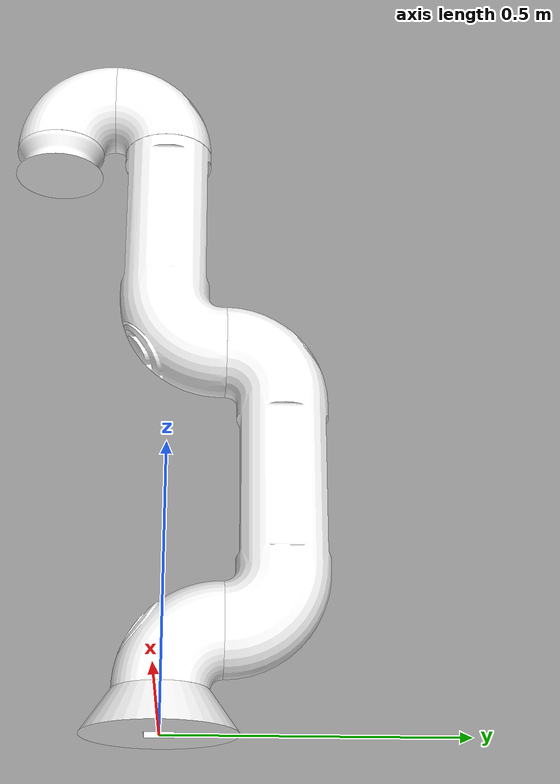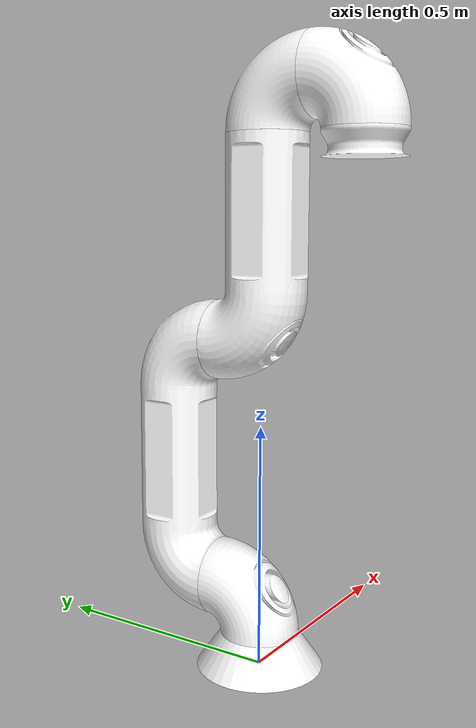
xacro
<?xml version="1.0"?>
<robot
  name="robot_arm" xmlns:xacro="http://ros.org/wiki/xacro">
  <link name="dummy_link"></link>
  <link
    name="base_link">
    <inertial>
      <origin
        xyz="0.0010762 0.032271 6.5803E-18"
        rpy="0 0 0" />
      <mass
        value="10" />
      <inertia
        ixx="0.0085262"
        ixy="-9.9757E-21"
        ixz="1.9334E-21"
        iyy="0.014824"
        iyz="3.5826E-19"
        izz="0.0085262" />
    </inertial>
    <visual>
      <origin
        xyz="0 0 0"
        rpy="0 0 0" />
      <geometry>
        <mesh
          filename="package://robot_arm/meshes/base_link.STL" />
      </geometry>
      <material
        name="">
        <color
          rgba="1 1 1 1" />
      </material>
    </visual>
    <collision>
      <origin
        xyz="0 0 0"
        rpy="0 0 0" />
      <geometry>
        <mesh
          filename="package://robot_arm/meshes/base_link.STL" />
      </geometry>
    </collision>
  </link>
  <joint name="dummy_joint" type="fixed">
    <origin rpy="0 0 0" xyz="0 0 0" />
    <parent link="dummy_link"/>
    <child link="base_link"/>
  </joint>

  <link
    name="link1">
    <inertial>
      <origin
        xyz="-0.030652 0.074961 2.1176E-07"
        rpy="0 0 0" />
      <mass
        value="12" />
      <inertia
        ixx="0.01107"
        ixy="0.0024842"
        ixz="-1.4407E-09"
        iyy="0.011299"
        iyz="-3.464E-09"
        izz="0.012247" />
    </inertial>
    <visual>
      <origin
        xyz="0 0 0"
        rpy="0 0 0" />
      <geometry>
        <mesh
          filename="package://robot_arm/meshes/link1.STL" />
      </geometry>
      <material
        name="">
        <color
          rgba="1 1 1 1" />
      </material>
    </visual>
    <collision>
      <origin
        xyz="0 0 0"
        rpy="0 0 0" />
      <geometry>
        <mesh
          filename="package://robot_arm/meshes/link1.STL" />
      </geometry>
    </collision>
  </link>
  <joint
    name="joint1"
    type="continuous">
    <origin
      xyz="0.0010762 0 0.071031"
      rpy="1.5708 0 -1.5526" />
    <parent
      link="base_link" />
    <child
      link="link1" />
    <axis
      xyz="0 -1 0" />
  </joint>
  <link
    name="link2">
    <inertial>
      <origin
        xyz="-0.11854 -0.24989 -7.9463E-07"
        rpy="0 0 0" />
      <mass
        value="5" />
      <inertia
        ixx="0.39092"
        ixy="0.0038032"
        ixz="-2.1049E-08"
        iyy="0.042388"
        iyz="-2.0793E-07"
        izz="0.39539" />
    </inertial>
    <visual>
      <origin
        xyz="0 0 0"
        rpy="0 0 0" />
      <geometry>
        <mesh
          filename="package://robot_arm/meshes/link2.STL" />
      </geometry>
      <material
        name="">
        <color
          rgba="1 1 1 1" />
      </material>
    </visual>
    <collision>
      <origin
        xyz="0 0 0"
        rpy="0 0 0" />
      <geometry>
        <mesh
          filename="package://robot_arm/meshes/link2.STL" />
      </geometry>
    </collision>
  </link>
  <joint
    name="joint2"
    type="continuous">
    <origin
      xyz="-0.067092 0.1 0"
      rpy="3.1416 0 0" />
    <parent
      link="link1" />
    <child
      link="link2" />
    <axis
      xyz="-1 0 0" />
  </joint>
  <link
    name="link3">
    <inertial>
      <origin
        xyz="0.065695 0.17196 1.5541E-07"
        rpy="0 0 0" />
      <mass
        value="3" />
      <inertia
        ixx="0.17224"
        ixy="-0.017882"
        ixz="-5.4523E-08"
        iyy="0.031903"
        iyz="1.5438E-07"
        izz="0.17578" />
    </inertial>
    <visual>
      <origin
        xyz="0 0 0"
        rpy="0 0 0" />
      <geometry>
        <mesh
          filename="package://robot_arm/meshes/link3.STL" />
      </geometry>
      <material
        name="">
        <color
          rgba="1 1 1 1" />
      </material>
    </visual>
    <collision>
      <origin
        xyz="0 0 0"
        rpy="0 0 0" />
      <geometry>
        <mesh
          filename="package://robot_arm/meshes/link3.STL" />
      </geometry>
    </collision>
  </link>
  <joint
    name="joint3"
    type="continuous">
    <origin
      xyz="0 -0.5 0"
      rpy="3.1416 0 0" />
    <parent
      link="link2" />
    <child
      link="link3" />
    <axis
      xyz="1 0 0" />
  </joint>
  <link
    name="link4">
    <inertial>
      <origin
        xyz="-0.030652 0.074961 2.1041E-07"
        rpy="0 0 0" />
      <mass
        value="1" />
      <inertia
        ixx="0.01107"
        ixy="0.0024842"
        ixz="-1.2233E-09"
        iyy="0.011299"
        iyz="-3.3622E-09"
        izz="0.012247" />
    </inertial>
    <visual>
      <origin
        xyz="0 0 0"
        rpy="0 0 0" />
      <geometry>
        <mesh
          filename="package://robot_arm/meshes/link4.STL" />
      </geometry>
      <material
        name="">
        <color
          rgba="1 1 1 1" />
      </material>
    </visual>
    <collision>
      <origin
        xyz="0 0 0"
        rpy="0 0 0" />
      <geometry>
        <mesh
          filename="package://robot_arm/meshes/link4.STL" />
      </geometry>
    </collision>
  </link>
  <joint
    name="joint4"
    type="continuous">
    <origin
      xyz="0.077092 0.4 0"
      rpy="3.1416 -0.0067121 3.1416" />
    <parent
      link="link3" />
    <child
      link="link4" />
    <axis
      xyz="0 1 0" />
  </joint>
  <link
    name="link5">
    <inertial>
      <origin
        xyz="-0.030652 0.078942 2.2478E-07"
        rpy="0 0 0" />
      <mass
        value="0.45" />
      <inertia
        ixx="0.01107"
        ixy="0.0024842"
        ixz="-2.4633E-09"
        iyy="0.011299"
        iyz="-5.0161E-09"
        izz="0.012247" />
    </inertial>
    <visual>
      <origin
        xyz="0 0 0"
        rpy="0 0 0" />
      <geometry>
        <mesh
          filename="package://robot_arm/meshes/link5.STL" />
      </geometry>
      <material
        name="">
        <color
          rgba="1 1 1 1" />
      </material>
    </visual>
    <collision>
      <origin
        xyz="0 0 0"
        rpy="0 0 0" />
      <geometry>
        <mesh
          filename="package://robot_arm/meshes/link5.STL" />
      </geometry>
    </collision>
  </link>
  <joint
    name="joint5"
    type="continuous">
    <origin
      xyz="-0.096019 0.1 0"
      rpy="0 0 1.5708" />
    <parent
      link="link4" />
    <child
      link="link5" />
    <axis
      xyz="0 1 0" />
  </joint>
  <link
    name="link6">
    <inertial>
      <origin
        xyz="3.7192E-15 0.023938 -1.9332E-14"
        rpy="0 0 0" />
      <mass
        value="0.15" />
      <inertia
        ixx="0.0012578"
        ixy="1.3557E-16"
        ixz="1.0842E-19"
        iyy="0.0021719"
        iyz="-7.3019E-16"
        izz="0.0012578" />
    </inertial>
    <visual>
      <origin
        xyz="0 0 0"
        rpy="0 0 0" />
      <geometry>
        <mesh
          filename="package://robot_arm/meshes/link6.STL" />
      </geometry>
      <material
        name="">
        <color
          rgba="1 1 1 1" />
      </material>
    </visual>
    <collision>
      <origin
        xyz="0 0 0"
        rpy="0 0 0" />
      <geometry>
        <mesh
          filename="package://robot_arm/meshes/link6.STL" />
      </geometry>
    </collision>
  </link>
  <joint
    name="joint6"
    type="continuous">
    <origin
      xyz="-0.1 0.10398 0"
      rpy="-3.1416 -0.20845 -1.5708" />
    <parent
      link="link5" />
    <child
      link="link6" />
    <axis
      xyz="0 1 0" />
  </joint>

  <ros2_control name="GazeboSystem" type="system">
  <hardware>
      <plugin>gazebo_ros2_control/GazeboSystem</plugin>
  </hardware>
 # Velocity Controllers

    <joint name="joint1">
      <command_interface name="velocity">
        <param name="min">-1000.0</param>
        <param name="max">1000.0</param>
      </command_interface>
      <state_interface name="position"/>
      <state_interface name="velocity"/>
    </joint>

    <joint name="joint2">
      <command_interface name="velocity">
        <param name="min">-1000.0</param>
        <param name="max">1000.0</param>
      </command_interface>
      <state_interface name="position"/>
      <state_interface name="velocity"/>
    </joint>

    <joint name="joint3">
      <command_interface name="velocity">
        <param name="min">-1000.0</param>
        <param name="max">1000.0</param>
      </command_interface>
      <state_interface name="position"/>
      <state_interface name="velocity"/>
    </joint>

    <joint name="joint4">
      <command_interface name="velocity">
        <param name="min">-1000.0</param>
        <param name="max">1000.0</param>
      </command_interface>
      <state_interface name="position"/>
      <state_interface name="velocity"/>
    </joint>

    <joint name="joint5">
      <command_interface name="velocity">
        <param name="min">-1000.0</param>
        <param name="max">1000.0</param>
      </command_interface>
      <state_interface name="position"/>
      <state_interface name="velocity"/>
    </joint>

    <joint name="joint6">
      <command_interface name="velocity">
        <param name="min">-1000.0</param>
        <param name="max">1000.0</param>
      </command_interface>
      <state_interface name="position"/>
      <state_interface name="velocity"/>
    </joint>

# Position Controller
    <joint name="joint1">
      <command_interface name="position">
        <param name="min">-3.14</param>
        <param name="max">3.14</param>
      </command_interface>
      <state_interface name="position"/>
      <state_interface name="velocity"/>
    </joint>

    <joint name="joint2">
      <command_interface name="position">
        <param name="min">-3.14</param>
        <param name="max">3.14</param>
      </command_interface>
      <state_interface name="position"/>
      <state_interface name="velocity"/>
    </joint>

    <joint name="joint3">
        <command_interface name="position">
          <param name="min">-3.14</param>
          <param name="max">3.14</param>
        </command_interface>
        <state_interface name="position"/>
        <state_interface name="velocity"/>
    </joint>

    <joint name="joint4">
        <command_interface name="position">
          <param name="min">-3.14</param>
          <param name="max">3.14</param>
        </command_interface>
        <state_interface name="position"/>
        <state_interface name="velocity"/>
    </joint>

    <joint name="joint5">
        <command_interface name="position">
          <param name="min">-3.14</param>
          <param name="max">3.14</param>
        </command_interface>
        <state_interface name="position"/>
        <state_interface name="velocity"/>
    </joint>

    <joint name="joint6">
        <command_interface name="position">
          <param name="min">-3.14</param>
          <param name="max">3.14</param>
        </command_interface>
        <state_interface name="position"/>
        <state_interface name="velocity"/>
    </joint>

  </ros2_control>

  <gazebo>
    <plugin filename="libgazebo_ros2_control.so" name="gazebo_ros2_control">
        <parameters>$(find robot_arm)/config/control.yaml</parameters>
    </plugin>
  </gazebo>
  <gazebo>
    <plugin name='vacuum_gripper' filename='libgazebo_ros_vacuum_gripper.so'>
      <link_name>link6</link_name>
      <max_distance>0.35</max_distance>
      <fixed>ground_plane</fixed>
      <fixed>conveyor_belt</fixed>
    </plugin>
  </gazebo>
  <gazebo>
    <plugin filename="libconveyor_belt_plugin.so" name="conveyor_belt_plugin">
        <max_velocity>0.05</max_velocity>
    </plugin>
  </gazebo>

  <gazebo>
  <plugin filename="libodometry_plugin.so" name="odometry_plugin">
    <frame>link6</frame>
    <world_frame>fixed_world</world_frame>
  </plugin>
  </gazebo>
</robot>
